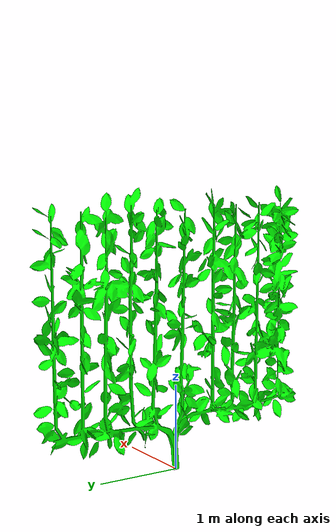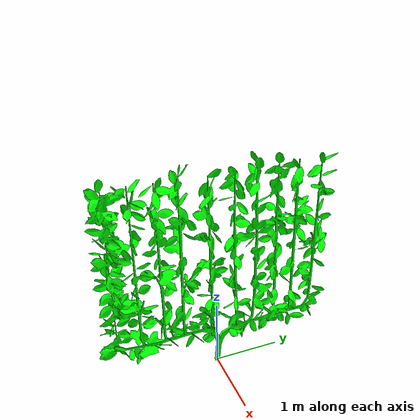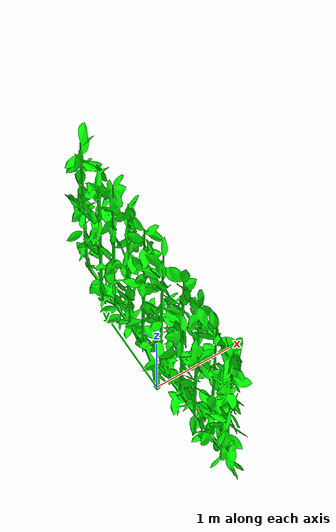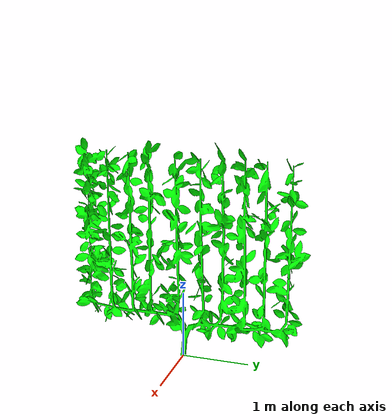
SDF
<?xml version="1.0" ?>
<sdf version="1.5">
  <model name="plant">
    <static>true</static>
    <link name="link">
      <pose>0 0 0 0 0 0</pose>
      <visual name="visual">
        <geometry>
          <mesh>
            <uri>model://plant/meshes/plant.stl</uri>
          </mesh>
        </geometry>
        <material>
          <ambient>0 1 0 1</ambient>
          <diffuse>0 1 0 1</diffuse>
          <specular>0.1 0.1 0.1 1</specular>
          <emissive>0 0 0 0</emissive>
        </material>
      </visual>
    </link>
  </model>
</sdf>
